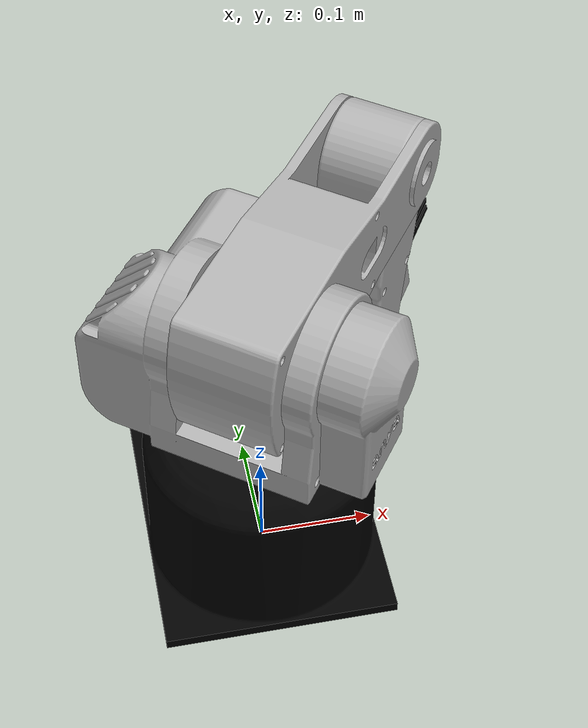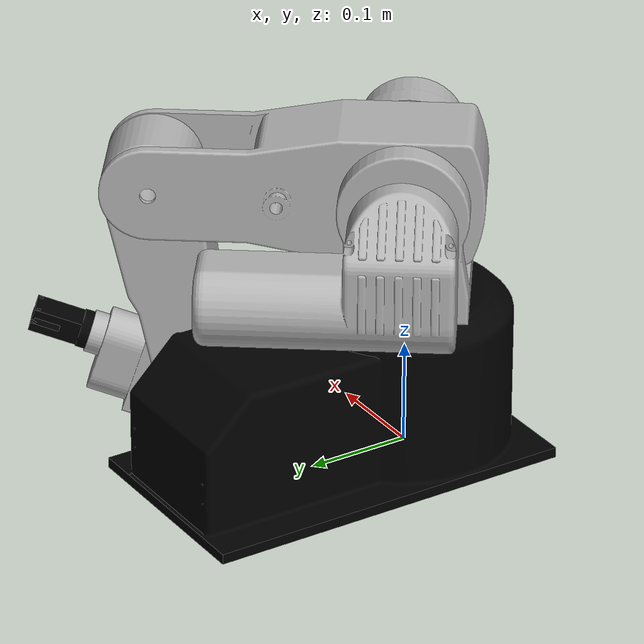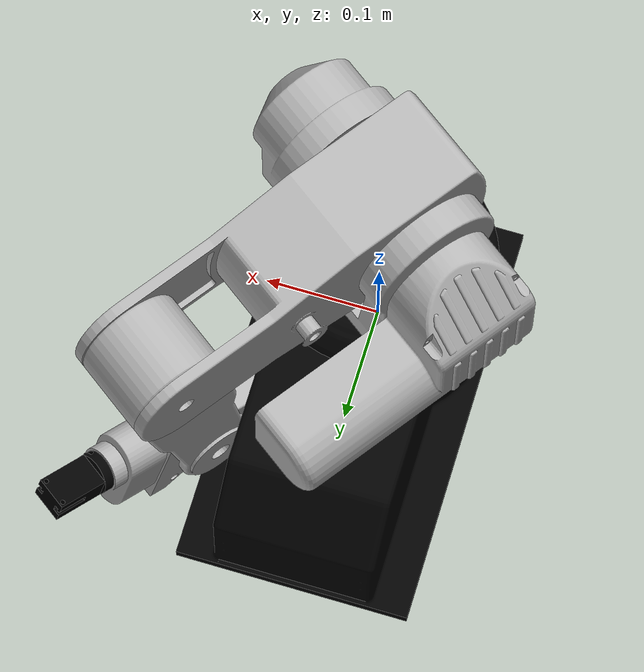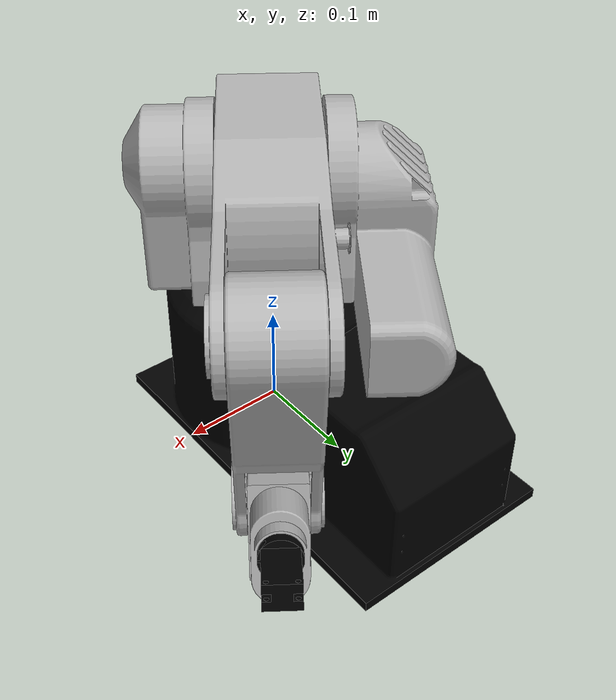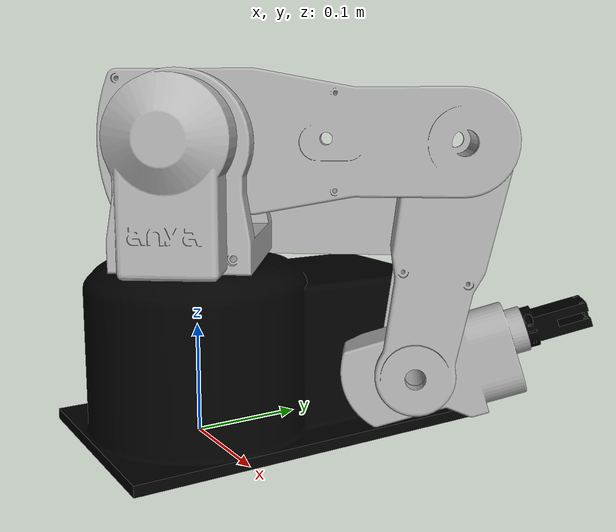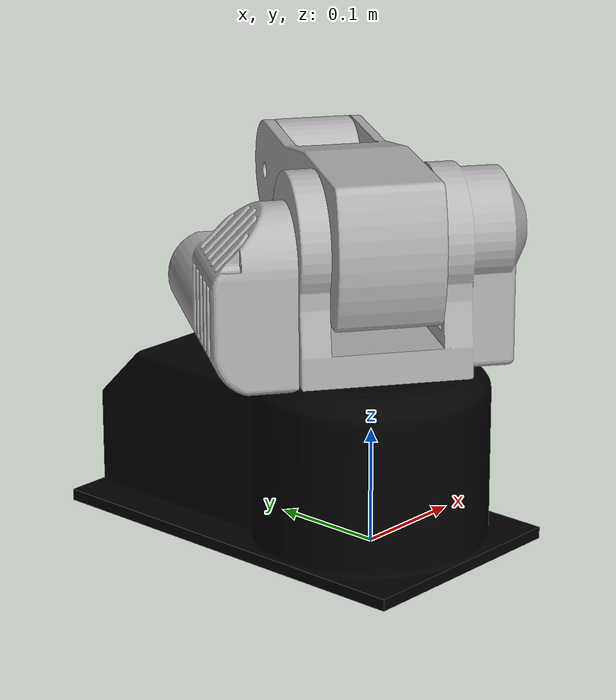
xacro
<?xml version="1.0" ?>
<robot name="arm" xmlns:xacro="http://www.ros.org/wiki/xacro">

  <xacro:include filename="$(find IR52C_description)/urdf/materials.xacro" />

  <link name="world"/>

  <joint name="virtual" type="fixed">
    <parent link="world"/>
    <child link="base_link"/>
    <origin xyz="0.0 0.0 0.0" rpy="0.0 0.0 0.0"/>
  </joint>

  <link name="base_link">
    <inertial>
      <origin xyz="1.558e-06 0.0587 0.0734" rpy="0 0 0"/>
      <mass value="10.0008"/>
      <inertia ixx="0.309271" iyy="0.165271" izz="0.320305" ixy="-4.3e-05" iyz="0.028403" ixz="3.7e-05"/>
    </inertial>
    <visual>
      <geometry>
        <mesh filename="package://IR52C_description/meshes/base_link.stl" scale="0.001 0.001 0.001"/>
      </geometry>
      <material name="black"/>
    </visual>
    <collision>
      <geometry>
        <mesh filename="package://IR52C_description/meshes/base_link.stl" scale="0.001 0.001 0.001"/>
      </geometry>
    </collision>
  </link>

  <link name="u_link_1">
    <inertial>
      <origin xyz="-0.0184 0.0155 0.0544" rpy="0 0 0"/>
      <mass value="5.9995"/>
      <inertia ixx="0.018017" iyy="0.027282" izz="0.02984" ixy="0.00444" iyz="0.001142" ixz="-0.001519"/>
    </inertial>
    <visual>
      <origin xyz="0.0 0.0 -0.16" rpy="0 0 0"/>
      <geometry>
        <mesh filename="package://IR52C_description/meshes/u_link_1.stl" scale="0.001 0.001 0.001"/>
      </geometry>
      <material name="silver"/>
    </visual>
    <collision>
      <origin xyz="0.0 0.0 -0.16" rpy="0 0 0"/>
      <geometry>
        <mesh filename="package://IR52C_description/meshes/u_link_1.stl" scale="0.001 0.001 0.001"/>
      </geometry>
    </collision>
  </link>

  <joint name="base" type="revolute">
    <origin xyz="0.0 0.0 0.16" rpy="0 0 2.5307"/>
    <parent link="base_link"/>
    <child link="u_link_1"/>
    <axis xyz="0.0 0.0 -1.0"/>
    <limit upper="5.65835744" lower="0.65798913" effort="10" velocity="1.0"/>
  </joint>

  <link name="shoulder_link_1">
    <inertial>
      <origin xyz="-0.0598 0.0016 0.0807" rpy="0 0 0"/>
      <mass value="3.9999"/>
      <inertia ixx="0.015585" iyy="0.015646" izz="0.003803" ixy="5e-06" iyz="0.000178" ixz="8.2e-05"/>
    </inertial>
    <visual>
      <origin xyz="-0.0628 -0.0 -0.267" rpy="0 0 0"/>
      <geometry>
        <mesh filename="package://IR52C_description/meshes/shoulder_link_1.stl" scale="0.001 0.001 0.001"/>
      </geometry>
      <material name="silver"/>
    </visual>
    <collision>
      <origin xyz="-0.0628 -0.0 -0.267" rpy="0 0 0"/>
      <geometry>
        <mesh filename="package://IR52C_description/meshes/shoulder_link_1.stl" scale="0.001 0.001 0.001"/>
      </geometry>
    </collision>
  </link>

  <joint name="shoulder" type="revolute">
    <origin xyz="0.0628 0.0 0.107" rpy="-1.5707 0 0"/>
    <parent link="u_link_1"/>
    <child link="shoulder_link_1"/>
    <axis xyz="1.0 0.0 0.0"/>
    <limit upper="3.1415" lower="0" effort="10" velocity="1.0"/>
  </joint>

  <link name="elbow_link_1">
    <inertial>
      <origin xyz="-0.0349 0.0 0.0876" rpy="0 0 0"/>
      <mass value="2.9999"/>
      <inertia ixx="0.005387" iyy="0.00546" izz="0.001108" ixy="0.0" iyz="0.0" ixz="-3e-06"/>
    </inertial>
    <visual>
      <origin xyz="-0.0358 -0.0 -0.4988" rpy="0 0 0"/>
      <geometry>
        <mesh filename="package://IR52C_description/meshes/elbow_link_1.stl" scale="0.001 0.001 0.001"/>
      </geometry>
      <material name="silver"/>
    </visual>
  </link>

  <joint name="elbow" type="revolute">
    <origin xyz="-0.0269 0.0 0.2318" rpy="-1.7453 0 0"/>
    <parent link="shoulder_link_1"/>
    <child link="elbow_link_1"/>
    <axis xyz="1.0 0.0 0.0"/>
    <limit upper="3.4906" lower="0" effort="10" velocity="1.0"/>
  </joint>

  <link name="wrist_1">
    <inertial>
      <origin xyz="0.0259 0.0019 0.0230" rpy="0 0 0"/>
      <mass value="2.0004"/>
      <inertia ixx="0.001358" iyy="0.001208" izz="0.000403" ixy="-0.0" iyz="-4.3e-05" ixz="-0.0"/>
    </inertial>
    <visual>
      <origin xyz="0.0251 -0.0 -0.7038" rpy="0 0 0"/>
      <geometry>
        <mesh filename="package://IR52C_description/meshes/wrist_1.stl" scale="0.001 0.001 0.001"/>
      </geometry>
      <material name="silver"/>
    </visual>
  </link>

  <joint name="wrist" type="revolute">
    <origin xyz="-0.061 0.0 0.205" rpy="2.0594 0 0"/>
    <parent link="elbow_link_1"/>
    <child link="wrist_1"/>
    <axis xyz="-1.0 0.0 0.0"/>
    <limit upper="3.4906" lower="0" effort="10" velocity="1.0"/>
  </joint>

  <link name="tool_1">
    <visual>
      <origin xyz="-0.0008 0.0062 -0.8069" rpy="0 0 0"/>
      <geometry>
        <mesh filename="package://IR52C_description/meshes/tool_1.stl" scale="0.001 0.001 0.001"/>
      </geometry>
      <material name="black"/>
    </visual>
  </link>

  <joint name="tool" type="revolute">
    <origin xyz="0.026 -0.0062 0.1031" rpy="0 0 0"/>
    <parent link="wrist_1"/>
    <child link="tool_1"/>
    <axis xyz="0.0 0.0 1.0"/>
    <limit upper="6.2831" lower="0" effort="10" velocity="1.0"/>
  </joint>

  <ros2_control name="IR52cSerialHardware" type="system">
    <hardware>
      <plugin>ir52c_hardware/STM32SerialInterface</plugin>
      <param name="device">/dev/ttyACM0</param>
      <param name="baud_rate">115200</param>
    </hardware>
    <joint name="base">
      <state_interface name="position"/>
      <command_interface name="position"/>
    </joint>
    <joint name="shoulder">
      <state_interface name="position"/>
      <command_interface name="position"/>
    </joint>
    <joint name="elbow">
      <state_interface name="position"/>
      <command_interface name="position"/>
    </joint>
    <joint name="wrist">
      <state_interface name="position"/>
      <command_interface name="position"/>
    </joint>
    <joint name="tool">
      <state_interface name="position"/>
      <command_interface name="position"/>
    </joint>
  </ros2_control>

</robot>

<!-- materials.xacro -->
<robot name="arm" xmlns:xacro="http://www.ros.org/wiki/xacro" >

<material name="silver">
  <color rgba="0.700 0.700 0.700 1.000"/>
</material>

<material name="black" >
  <color rgba="0.0 0.0 0.0 1.0" />
</material>

<material name="blue" >
  <color rgba="0.011764705882352941 0.2627450980392157 0.8745098039215686 1.0" />
</material>

</robot>
